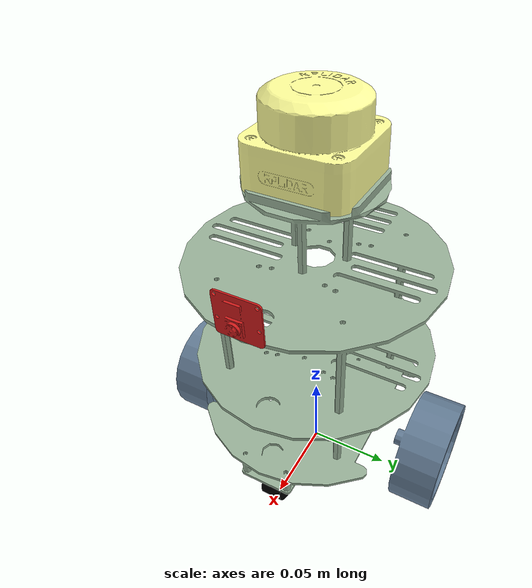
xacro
<?xml version="1.0"?>
<robot name="my_robot_description" xmlns:xacro="http://www.ros.org/wiki/xacro">

    <xacro:include filename="common_properties.xacro" />
    <xacro:include filename="my_robot_base_mesh.xacro" />
    <xacro:include filename="lidar.xacro" />
    <xacro:include filename="imu.xacro" />
    <xacro:include filename="camera.xacro" />

</robot>

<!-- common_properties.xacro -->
<robot xmlns:xacro="http://www.ros.org/wiki/xacro">

    <material name="orange">
    <color rgba="1 0.647 0.0 1"/>
    </material>

    <material name="grey">
        <color rgba="0.5 0.5 0.5 1"/>
    </material>

    <material name="white">
        <color rgba="1 1 1 1"/>
    </material>

    <material name="red">
        <color rgba="1 0.0 0.0 1"/>
    </material>

    <material name="black">
        <color rgba="0.0 0.0 0.0 1"/>
    </material>

    <material name="green">
        <color rgba="0.0 0.1 0.0 1"/>
    </material>

    <material name="grünlichesGrau">
        <color rgba="0.6 0.7 0.6 1"/>
    </material>

    <material name="warmesRot">
        <color rgba="0.8 0.1 0.1 1"/>
    </material>

    <material name="grauBlau">
        <color rgba="0.4 0.5 0.6 1"/>
    </material>

    <material name="pastelligesZitronengelb">
        <color rgba="1.0 1.0 0.6 1"/>
    </material>

    <gazebo reference="base_link">
        <material>Gazebo/DarkGrey</material>
    </gazebo>

    <gazebo reference="right_wheel_link">
        <material>Gazebo/Orange</material>
        <m1 value="10.0"/>
        <m2 value="10.0"/>
    </gazebo>

    <gazebo reference="left_wheel_link">
        <material>Gazebo/Orange</material>
        <m1 value="10.0"/>
        <m2 value="10.0"/>
    </gazebo>

    <gazebo reference="front_caster_wheel_link">
        <material>Gazebo/FlatBlack</material>
        <m1 value="10.0"/>
        <m2 value="10.0"/>
    </gazebo>

    <gazebo reference="rear_caster_wheel_link">
        <material>Gazebo/FlatBlack</material>
        <m1 value="10.0"/>
        <m2 value="10.0"/>
    </gazebo>

    <xacro:macro name="box_inertia" params="m l w h xyz rpy">
        <inertial>
            <origin xyz="${xyz}" rpy="${rpy}" />
            <mass value="${m}" />
            <inertia ixx="${(m/12) * (h*h + l*l)}" ixy="0.0" ixz="0.0"
                     iyy="${(m/12) * (w*w + l*l)}"  iyz="0.0"
                     izz="${(m/12) * (w*w + h*h)}" />
        </inertial>
    </xacro:macro>

    <xacro:macro name="cylinder_inertia" params="m r h xyz rpy">
        <inertial>
            <origin xyz="${xyz}" rpy="${rpy}" />
            <mass value="${m}" />
            <inertia ixx="${(m/12) * (3*r*r + h*h)}" ixy="0.0" ixz="0.0"
                     iyx="0.0" iyy="${(m/12) * (3*r*r + h*h)}" iyz="0.0"
                     izx="0.0" izy="0.0" izz="${(m/2) * (r*r)}" />
        </inertial>
    </xacro:macro>

    <xacro:macro name="sphere_inertia" params="m r xyz rpy">
        <inertial>
            <origin xyz="${xyz}" rpy="${rpy}" />
            <mass value="${m}" />
            <inertia ixx="${(2/5) * (r*r) * m }" ixy="0.0" ixz="0.0"
                     iyy="${(2/5) * (r*r) * m }" iyz="0.0"
                     izz="${(2/5) * (r*r) * m }" />
        </inertial>
    </xacro:macro>

</robot>

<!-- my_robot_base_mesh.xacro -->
<robot xmlns:xacro="http://www.ros.org/wiki/xacro">

    <xacro:property name="wheel_y_offset" value="0.0775"/>
    <xacro:property name="wheel_z_offset" value="0.0205"/>
    <xacro:property name="wheel_radius" value="0.033"/>
    <xacro:property name="wheel_length" value="0.025"/>
    <xacro:property name="robot_center_to_base_link_x_distance" value="0.054"/>
    <xacro:property name="robot_center_to_base_link_z_distance" value="0.1375"/>
    <xacro:property name="body_length" value="0.1855"/>
    <xacro:property name="body_radius" value="0.07"/>
    <xacro:property name="caster_wheel_radius" value="0.0125"/>
    <xacro:property name="caster_wheel_length" value="0.013"/>
    <xacro:property name="base_caster_wheel_link_distance" value="0.0485"/>
    <xacro:property name="base_link_inertia_z_offset" value="0.0925"/>
    <xacro:property name="lidar_radius" value="0.0278"/>
    <xacro:property name="lidar_length" value="0.0413"/>
    <xacro:property name="imu_length" value="0.025"/>
    <xacro:property name="imu_width" value="0.02"/>
    <xacro:property name="imu_height" value="0.0015"/>
    <xacro:property name="base_imu_z_distance" value="${body_length - 0.046}"/>

    <xacro:property name= "meshes_file_direction" value="package://my_robot_description/models/meshes"/>

    <!-- base_footprint -->
    <link name="base_footprint" />

    <!-- base_link -->
    <link name="base_link">
        <visual>
            <geometry>
                <mesh filename="${meshes_file_direction}/my_robot_base.stl" scale="0.001 0.001 0.001"/>
            </geometry>
            <material name="grünlichesGrau"/>
            <origin xyz="0.0 0.0 ${robot_center_to_base_link_z_distance}" rpy="${pi/2} 0.0 ${pi/2}"/>
        </visual>
        <collision>
            <geometry>
                <cylinder radius="${body_radius}" length="${body_length}"/>
            </geometry>
            <origin xyz="0.0 0.0 ${body_length / 2}" rpy="0.0 0.0 0.0"/>
        </collision>
        <xacro:box_inertia m="2.0" l="${body_length}" w="${body_radius * 2}" h="${body_radius * 2}"
                                xyz="0.0 0.0 ${wheel_z_offset + (body_length / 2) - 0.02}" rpy="0.0 0.0 0.0" />
    </link>

    <!-- footprint_base_joint -->
    <joint name="footprint_base_joint" type="fixed">
        <parent link="base_footprint"/>
        <child link="base_link"/>
        <origin xyz="0 0 ${caster_wheel_radius}" rpy= "0 0 0"/>
    </joint>

    <!-- wheel_link -->
    <xacro:macro name="wheel_link" params="prefix">
        <link name="${prefix}_wheel_link">
            <visual>
                <geometry>
                <mesh filename="${meshes_file_direction}/wheel.stl" scale="0.001 0.001 0.001"/>
                </geometry>
                <material name="grauBlau"/>
                <origin xyz="0.0 0.0 ${-wheel_length/2}" rpy="${pi/2}  0.0 0.0"/>
            </visual>
            <collision>
                <geometry>
                    <sphere radius="${wheel_radius}"/>
                </geometry>
                <origin xyz="0.0 0.0 0.0" rpy="0.0 0.0 0.0"/>
            </collision>
            <xacro:cylinder_inertia m="0.5" r="${wheel_radius}" h="${wheel_length}"
                                    xyz="0.0 0.0 0.0" rpy="0.0 0.0 0.0" />
        </link>
    </xacro:macro>

    <xacro:wheel_link prefix="right"/>
    <xacro:wheel_link prefix="left"/>

    <!-- base_left_wheel_joint -->
    <joint name="base_left_wheel_joint" type="continuous">
        <parent link="base_link"/>
        <child link="left_wheel_link"/>
        <origin xyz="0.0 ${wheel_y_offset} ${wheel_z_offset}" rpy= "${-pi/2} ${pi} ${pi}"/>
        <axis xyz="0 0 -1"/>
    </joint>

    <!-- base_right_wheel_joint -->
    <joint name="base_right_wheel_joint" type="continuous">
        <parent link="base_link"/>
        <child link="right_wheel_link"/>
        <origin xyz="0.0 ${-wheel_y_offset} ${wheel_z_offset}" rpy= "${-pi/2} 0.0 0.0"/>
        <axis xyz="0 0 1"/>
    </joint>

    <!-- caster-Wheel-link -->
    <xacro:macro name="caster_wheel_link" params="prefix">
        <link name="${prefix}_caster_wheel_link">
            <visual>
                <geometry>
                    <mesh filename="${meshes_file_direction}/caster_wheel.stl" scale="0.001 0.001 0.001"/>
                </geometry>
                <material name="black"/>
                <origin xyz="0.0 ${caster_wheel_length/2} 0.0" rpy="0.0 0.0 ${-pi/2}"/>
            </visual>
            <collision>
                <geometry>
                    <sphere radius="${caster_wheel_radius}"/>
                </geometry>
                <material name="black"/>
                <origin xyz="0.0 0.0 0.0" rpy="0.0 0.0 0.0"/>
            </collision>
            <xacro:cylinder_inertia m="0.250" r="${caster_wheel_radius}" h="${caster_wheel_length}"
                                    xyz="0.0 0.0 0.0" rpy="0.0 0.0 0.0" />
        </link>
    </xacro:macro>

    <xacro:caster_wheel_link prefix="front"/>
    <xacro:caster_wheel_link prefix="rear"/>

    <!--base_front_caster_wheel_joint-->
    <joint name="base_front_caster_wheel_joint" type="fixed">
        <parent link="base_link"/>
        <child link="front_caster_wheel_link"/>
        <origin xyz="${base_caster_wheel_link_distance} 0.0 0.00017" rpy= "0.0 0.0 0.0"/>

    </joint>

    <!--base_rear_caster_wheel_joint-->
    <joint name="base_rear_caster_wheel_joint" type="fixed">
        <parent link="base_link"/>
        <child link="rear_caster_wheel_link"/>
        <origin xyz="${-base_caster_wheel_link_distance} 0.0 0.00017" rpy= "0.0 0.0 0.0"/>
    </joint>

    <!-- odom_link -->

    <!-- base_link_odom_joint -->

    <!-- base_link_Joint -->

</robot>

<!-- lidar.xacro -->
<robot xmlns:xacro="http://www.ros.org/wiki/xacro">

    <!-- lidar_link -->
    <link name="laser">
        <visual>
            <geometry>
                <mesh filename="package://my_robot_description/models/meshes/c1m1_appearance_v2_20230926_3d_.stl" scale="0.001 0.001 0.001"/>
            </geometry>
            <material name="pastelligesZitronengelb"/>
            <origin xyz="0.0 0.0 0.0" rpy="0.0 0.0 0.0"/>
        </visual>
        <collision>
            <geometry>
                <cylinder radius="${lidar_radius + 0.007}" length="${lidar_length}"/>
            </geometry>
            <origin xyz="0.0 0.0 ${lidar_length/2}" rpy="0.0 0.0 0.0"/>
        </collision>
        <xacro:cylinder_inertia m="0.1" r="${lidar_radius}" h="${lidar_length - 0.002}"
                                xyz="0.0 0.0 ${lidar_length/2}" rpy="0.0 0.0 0.0" />
    </link>

    <!-- base_laser_joint -->
    <joint name="base_laser_joint" type="fixed">
        <parent link="base_link"/>
        <child link="laser"/>
        <origin xyz="0 0 ${body_length - 0.0025}" rpy= "0 0 0"/>
    </joint>

                <!-- Output as a PointCloud2, see above for other types -->
                <!-- Clip intensity values so all are above 100, optional -->
                <!-- Frame id for header of output, defaults to sensor's parent link name -->

</robot>

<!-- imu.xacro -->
<robot xmlns:xacro="http://www.ros.org/wiki/xacro">

    <!-- imu_link -->
    <link name="bno055">
        <visual>
            <geometry>
                <mesh filename="package://my_robot_description/models/meshes/adafruit_bno055_stemma_qt_1.stl" scale="0.001 0.001 0.001"/>
            </geometry>
            <material name="warmesRot"/>
            <origin xyz="0.0 0.0 ${imu_height/2}" rpy="0.0 0.0 0.0"/>
        </visual>
        <collision>
            <geometry>
                <box size="${imu_width} ${imu_length} ${imu_height * 3}"/>
            </geometry>
            <origin xyz="0.0 0.0 ${imu_height * 2}" rpy="0.0 0.0 ${pi/2}"/>
        </collision>
        <xacro:box_inertia m="0.05" l="${imu_length}" w="${imu_width}" h="${imu_height}"
                                xyz="0.0 0.0 ${imu_height/2}" rpy="0.0 0.0 0.0" />
    </link>

    <!-- base_imu_joint -->
    <joint name="base_imu_joint" type="fixed">
        <parent link="base_link"/>
        <child link="bno055"/>
        <origin xyz="0 0 ${base_imu_z_distance + 0.0335}" rpy= "0 0 0.0"/>
    </joint>

</robot>

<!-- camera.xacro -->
<robot xmlns:xacro="http://www.ros.org/wiki/xacro">

    <xacro:property name="camera_length" value="0.025"/>
    <xacro:property name="camera_width" value="0.025"/>
    <xacro:property name="camera_height" value="0.01"/>
    <xacro:property name="base_camera_z_distance" value="${body_length - 0.039}"/>
    <xacro:property name="camera_x_offset" value="0.07"/>

    <!-- camera_link -->
    <link name="camera">
        <visual>
            <geometry>
                <mesh filename="package://my_robot_description/models/meshes/cam_v2_1_v1.stl" scale="0.001 0.001 0.001"/>
            </geometry>
            <material name="warmesRot"/>
            <origin xyz="0.0 0.0 ${camera_height/2}" rpy="${pi/2} 0.0 0.0"/>
        </visual>
        <collision>
            <geometry>
                <box size="${camera_length} ${camera_width} ${camera_height}"/>
            </geometry>
            <origin xyz="0.0 0.0 ${camera_height/2}" rpy="0.0 ${pi/2} 0.0"/>
        </collision>
        <xacro:box_inertia m="0.05" l="${camera_length}" w="${camera_width}" h="${camera_height}"
                                xyz="0.0 0.0 ${camera_height/2}" rpy="0.0 0.0 ${pi/2}" />
    </link>

    <!-- base_camera_joint -->
    <joint name="base_camera_joint" type="fixed">
        <parent link="base_link"/>
        <child link="camera"/>
        <origin xyz="${camera_x_offset} 0 ${base_camera_z_distance}" rpy= "0 0 0.0"/>
    </joint>

    <!-- Source: https://www.ros.org/reps/rep-0103.html#suffix-frames -->

    <!-- camera_optical_link -->
    <link name="camera_optical"></link>

    <!-- camera_optical_joint -->
    <joint name="camera_optical_joint" type="fixed">
        <parent link="camera"/>
        <child link="camera_optical"/>
        <origin xyz="0 0 0" rpy= "${-pi/2} 0.0 ${-pi/2}"/>
    </joint>

    <!-- source: https://classic.gazebosim.org/tutorials?tut=ros_gzplugins -->
    <gazebo reference="camera">
        <material>Gazebo/Red</material>

        <sensor name="camera" type="camera">
            <pose> 0 0 0 0 0 0</pose>
            <visualize>true</visualize>
            <update_rate>30</update_rate>
            <camera>
                <horizontal_fov>1.0856</horizontal_fov>
                <image>
                    <width>640</width>
                    <height>480</height>
                    <format>R8G8B8</format>
                </image>
                <clip>
                    <near>0.05</near>
                    <far>3.0</far>
                </clip>
            </camera>

            <plugin name="camera_controller" filename="libgazebo_ros_camera.so">
                <alwaysOn>true</alwaysOn>
                <imageTopicName>image_raw/compressed</imageTopicName>
                <frame_name>camera_optical</frame_name>
            </plugin>
        </sensor>
    </gazebo>

</robot>
